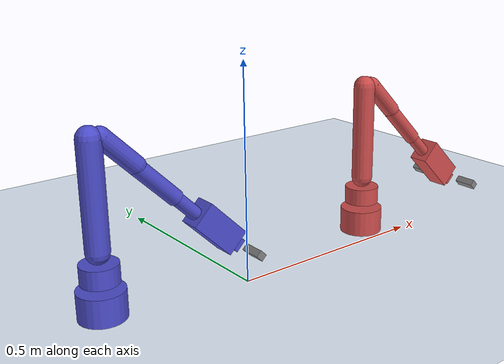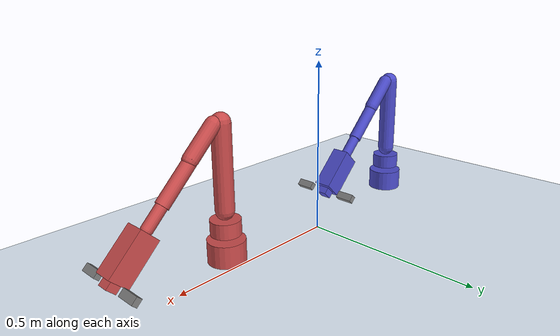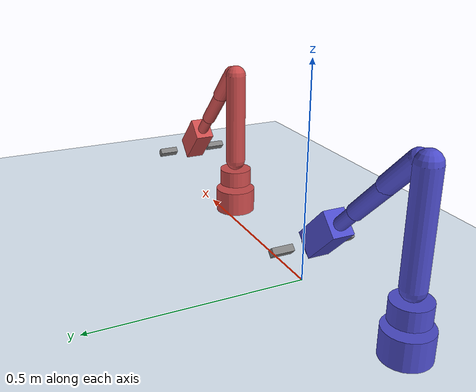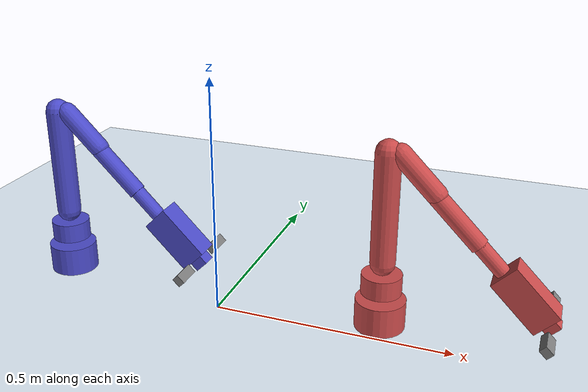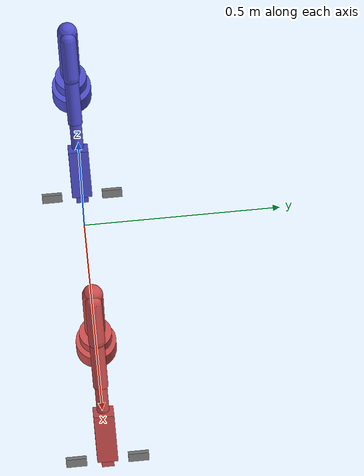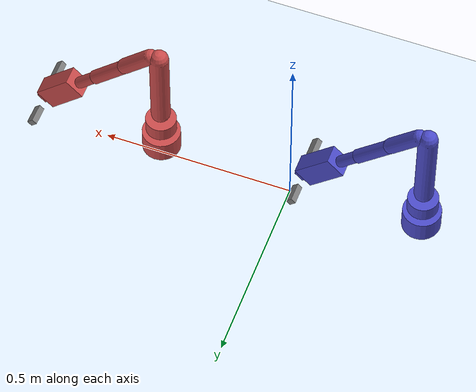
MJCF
<mujoco model="alicia_dual_arm_simple">
  <compiler angle="radian"/>
  <option timestep="0.002" gravity="0 0 -9.81"/>

  <visual>
    <scale jointwidth="0.015" framelength="0.2" framewidth="0.008"/>
  </visual>

  <asset>
    <texture builtin="gradient" height="100" rgb1=".4 .5 .6" rgb2="0 0 0" type="skybox" width="100"/>
    <texture builtin="checker" height="100" name="texplane" rgb1="1 1 1" rgb2=".8 .9 1" type="2d" width="100"/>
    <material name="MatPlane" reflectance="0.5" texrepeat="1 1" texture="texplane" texuniform="true"/>
    <material name="blue" rgba="0.3 0.3 0.8 1"/>
    <material name="red" rgba="0.8 0.3 0.3 1"/>
  </asset>

  <worldbody>
    <geom type="plane" size="2 2 0.1" material="MatPlane"/>
    <light diffuse=".5 .5 .5" pos="0 0 3" dir="0 0 -1"/>

    <!-- 左臂 (蓝色) -->
    <body name="left_base_link" pos="-0.35 0 0">
      <geom type="cylinder" size="0.05 0.03" rgba="0.3 0.3 0.8 1" pos="0 0 0.065"/>
      <body name="left_Link1" pos="0 0 0.1295">
        <inertial pos="0 0 0.003" mass="0.19" diaginertia="0.00034 0.00026 0.00015"/>
        <joint name="left_Joint1" axis="0 0 1" range="-2.16 2.16" damping="0.01"/>
        <geom type="cylinder" size="0.04 0.02" rgba="0.3 0.3 0.8 1"/>
        <body name="left_Link2" pos="0 0 0.04287" quat="0.5 0.5 -0.5 0.5">
          <inertial pos="0.15 0 0" mass="0.22" diaginertia="0.00023 0.00014 0.00013"/>
          <joint name="left_Joint2" axis="0 0 1" range="-1.57 1.57" damping="0.01"/>
          <geom type="capsule" size="0.025" fromto="0 0 0 0.22367 0 0" rgba="0.3 0.3 0.8 1"/>
          <body name="left_Link3" pos="0.22367 -0.022592 0" quat="0.383 0 0 -0.924">
            <inertial pos="0.056 0 0" mass="0.085" diaginertia="8.1e-05 7.6e-05 2.8e-05"/>
            <joint name="left_Joint3" axis="0 0 1" range="-0.5 2.36" damping="0.01"/>
            <geom type="capsule" size="0.02" fromto="0 0 0 0.0986 0 0" rgba="0.3 0.3 0.8 1"/>
            <body name="left_Link4" pos="0.0986 -0.00211 0.0002" quat="0.5 -0.5 0.5 -0.5">
              <inertial pos="0 0 0.066" mass="0.065" diaginertia="7e-05 6.9e-05 1.7e-05"/>
              <joint name="left_Joint4" axis="0 0 -1" range="-3.14 3.14" damping="0.01"/>
              <geom type="cylinder" size="0.018 0.06" rgba="0.3 0.3 0.8 1" pos="0 0 0.06"/>
              <body name="left_Link5" pos="0 0.00015 0.12275" quat="0.707 0.707 0 0">
                <inertial pos="-0.011 0.031 0" mass="0.046" diaginertia="2.5e-05 1.8e-05 1.6e-05"/>
                <joint name="left_Joint5" axis="0 0 1" range="-1.57 1.5" damping="0.01"/>
                <geom type="capsule" size="0.015" fromto="0 0 0 0 0.0573 0" rgba="0.3 0.3 0.8 1"/>
                <body name="left_Link6" pos="-0.00385 0.0573 -0.00035" quat="0.707 -0.707 0 0">
                  <inertial pos="-0.032 0 0.027" mass="0.12" diaginertia="9.1e-05 7.9e-05 3.5e-05"/>
                  <joint name="left_Joint6" axis="0 0 -1" range="-3.14 3.14" damping="0.01"/>
                  <geom type="box" size="0.03 0.025 0.06" rgba="0.3 0.3 0.8 1" pos="0 0 0.065"/>
                  <!-- 夹爪底座 -->
                  <geom type="box" size="0.015 0.015 0.015" rgba="0.3 0.3 0.8 1" pos="0 0 0.13"/>
                  <!-- 末端执行器参考点 -->
                  <geom size="0.008" rgba="0 1 0 1" pos="0 0 0.13118"/>
                  <body name="left_Link7" pos="-0.0002 0.050502 0.13118" quat="0.707 -0.707 0 0">
                    <inertial pos="0 0.043 0.011" mass="0.026" diaginertia="8.5e-06 6.5e-06 4.7e-06"/>
                    <joint name="left_finger" type="slide" axis="0 0 1" range="-0.05 0" damping="0.005"/>
                    <geom type="box" size="0.008 0.01 0.025" rgba="0.5 0.5 0.5 1" pos="0 0 0.025"/>
                  </body>
                  <body name="left_Link8" pos="-0.0002 -0.050498 0.13118" quat="0.707 0.707 0 0">
                    <inertial pos="0 -0.043 0.011" mass="0.026" diaginertia="8.5e-06 6.5e-06 4.7e-06"/>
                    <joint name="left_right_finger" type="slide" axis="0 0 -1" range="0 0.05" damping="0.005"/>
                    <geom type="box" size="0.008 0.01 0.025" rgba="0.5 0.5 0.5 1" pos="0 0 0.025"/>
                  </body>
                </body>
              </body>
            </body>
          </body>
        </body>
      </body>
    </body>

    <!-- 右臂 (红色) -->
    <body name="right_base_link" pos="0.35 0 0">
      <geom type="cylinder" size="0.05 0.03" rgba="0.8 0.3 0.3 1" pos="0 0 0.065"/>
      <body name="right_Link1" pos="0 0 0.1295">
        <inertial pos="0 0 0.003" mass="0.19" diaginertia="0.00034 0.00026 0.00015"/>
        <joint name="right_Joint1" axis="0 0 1" range="-2.16 2.16" damping="0.01"/>
        <geom type="cylinder" size="0.04 0.02" rgba="0.8 0.3 0.3 1"/>
        <body name="right_Link2" pos="0 0 0.04287" quat="0.5 0.5 -0.5 0.5">
          <inertial pos="0.15 0 0" mass="0.22" diaginertia="0.00023 0.00014 0.00013"/>
          <joint name="right_Joint2" axis="0 0 1" range="-1.57 1.57" damping="0.01"/>
          <geom type="capsule" size="0.025" fromto="0 0 0 0.22367 0 0" rgba="0.8 0.3 0.3 1"/>
          <body name="right_Link3" pos="0.22367 -0.022592 0" quat="0.383 0 0 -0.924">
            <inertial pos="0.056 0 0" mass="0.085" diaginertia="8.1e-05 7.6e-05 2.8e-05"/>
            <joint name="right_Joint3" axis="0 0 1" range="-0.5 2.36" damping="0.01"/>
            <geom type="capsule" size="0.02" fromto="0 0 0 0.0986 0 0" rgba="0.8 0.3 0.3 1"/>
            <body name="right_Link4" pos="0.0986 -0.00211 0.0002" quat="0.5 -0.5 0.5 -0.5">
              <inertial pos="0 0 0.066" mass="0.065" diaginertia="7e-05 6.9e-05 1.7e-05"/>
              <joint name="right_Joint4" axis="0 0 -1" range="-3.14 3.14" damping="0.01"/>
              <geom type="cylinder" size="0.018 0.06" rgba="0.8 0.3 0.3 1" pos="0 0 0.06"/>
              <body name="right_Link5" pos="0 0.00015 0.12275" quat="0.707 0.707 0 0">
                <inertial pos="-0.011 0.031 0" mass="0.046" diaginertia="2.5e-05 1.8e-05 1.6e-05"/>
                <joint name="right_Joint5" axis="0 0 1" range="-1.57 1.5" damping="0.01"/>
                <geom type="capsule" size="0.015" fromto="0 0 0 0 0.0573 0" rgba="0.8 0.3 0.3 1"/>
                <body name="right_Link6" pos="-0.00385 0.0573 -0.00035" quat="0.707 -0.707 0 0">
                  <inertial pos="-0.032 0 0.027" mass="0.12" diaginertia="9.1e-05 7.9e-05 3.5e-05"/>
                  <joint name="right_Joint6" axis="0 0 -1" range="-3.14 3.14" damping="0.01"/>
                  <geom type="box" size="0.03 0.025 0.06" rgba="0.8 0.3 0.3 1" pos="0 0 0.065"/>
                  <!-- 夹爪底座 -->
                  <geom type="box" size="0.015 0.015 0.015" rgba="0.8 0.3 0.3 1" pos="0 0 0.13"/>
                  <!-- 末端执行器参考点 -->
                  <geom size="0.008" rgba="0 1 0 1" pos="0 0 0.13118"/>
                  <body name="right_Link7" pos="-0.0002 0.050502 0.13118" quat="0.707 -0.707 0 0">
                    <inertial pos="0 0.043 0.011" mass="0.026" diaginertia="8.5e-06 6.5e-06 4.7e-06"/>
                    <joint name="right_left_finger" type="slide" axis="0 0 1" range="-0.05 0" damping="0.005"/>
                    <geom type="box" size="0.008 0.01 0.025" rgba="0.5 0.5 0.5 1" pos="0 0 0.025"/>
                  </body>
                  <body name="right_Link8" pos="-0.0002 -0.050498 0.13118" quat="0.707 0.707 0 0">
                    <inertial pos="0 -0.043 0.011" mass="0.026" diaginertia="8.5e-06 6.5e-06 4.7e-06"/>
                    <joint name="right_right_finger" type="slide" axis="0 0 -1" range="0 0.05" damping="0.005"/>
                    <geom type="box" size="0.008 0.01 0.025" rgba="0.5 0.5 0.5 1" pos="0 0 0.025"/>
                  </body>
                </body>
              </body>
            </body>
          </body>
        </body>
      </body>
    </body>
  </worldbody>

  <actuator>
    <!-- 左臂执行器 -->
    <motor joint="left_Joint1" gear="100"/>
    <motor joint="left_Joint2" gear="100"/>
    <motor joint="left_Joint3" gear="100"/>
    <motor joint="left_Joint4" gear="100"/>
    <motor joint="left_Joint5" gear="100"/>
    <motor joint="left_Joint6" gear="100"/>
    <position joint="left_finger" kp="10"/>
    <position joint="left_right_finger" kp="10"/>

    <!-- 右臂执行器 -->
    <motor joint="right_Joint1" gear="100"/>
    <motor joint="right_Joint2" gear="100"/>
    <motor joint="right_Joint3" gear="100"/>
    <motor joint="right_Joint4" gear="100"/>
    <motor joint="right_Joint5" gear="100"/>
    <motor joint="right_Joint6" gear="100"/>
    <position joint="right_left_finger" kp="10"/>
    <position joint="right_right_finger" kp="10"/>
  </actuator>

  <contact>
    <!-- 左臂自碰撞排除 -->
    <exclude body1="left_base_link" body2="left_Link1"/>
    <exclude body1="left_Link1" body2="left_Link2"/>
    <exclude body1="left_Link2" body2="left_Link3"/>
    <exclude body1="left_Link3" body2="left_Link4"/>
    <exclude body1="left_Link4" body2="left_Link5"/>
    <exclude body1="left_Link5" body2="left_Link6"/>
    <exclude body1="left_Link6" body2="left_Link7"/>
    <exclude body1="left_Link6" body2="left_Link8"/>

    <!-- 右臂自碰撞排除 -->
    <exclude body1="right_base_link" body2="right_Link1"/>
    <exclude body1="right_Link1" body2="right_Link2"/>
    <exclude body1="right_Link2" body2="right_Link3"/>
    <exclude body1="right_Link3" body2="right_Link4"/>
    <exclude body1="right_Link4" body2="right_Link5"/>
    <exclude body1="right_Link5" body2="right_Link6"/>
    <exclude body1="right_Link6" body2="right_Link7"/>
    <exclude body1="right_Link6" body2="right_Link8"/>
  </contact>
</mujoco>
